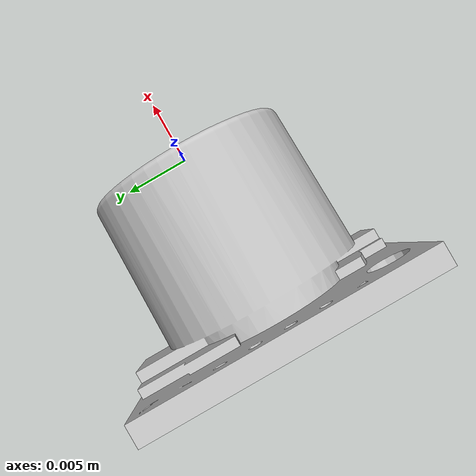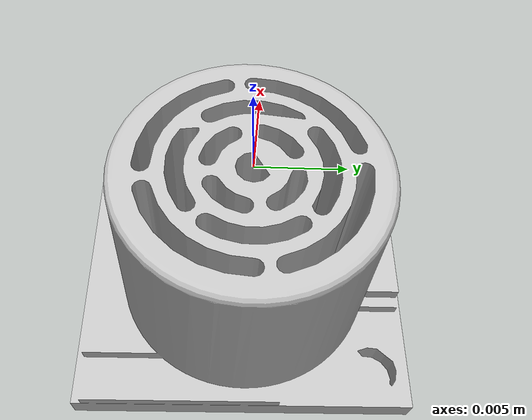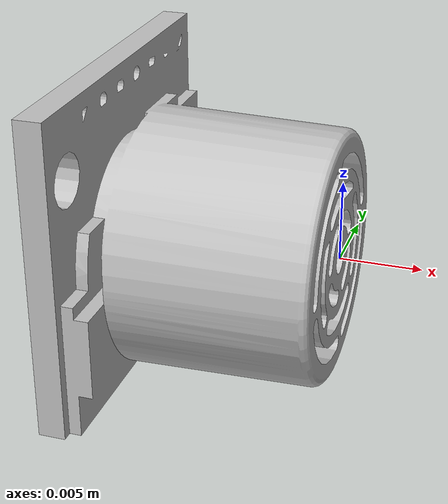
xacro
<robot name="Rear_URF_link"><link name="Rear_URF_link">
    <inertial>
      <origin rpy="0 0 0" xyz="-0.00942258060476558 1.68888278491873E-05 -0.000193183712129189" />
      <mass value="0.0027748785439141" />
      <inertia ixx="1.28314681514116E-07" ixy="-1.54585356343498E-10" ixz="3.1103059972555E-09" iyy="1.18940672500041E-07" iyz="4.35265830364838E-09" izz="1.28434121553125E-07" />
    </inertial>
    <visual>
      <origin rpy="0 0 0" xyz="0 0 0" />
      <geometry>
        <mesh filename="package://robotican_description/komodo/meshes/Rear_URF_link.STL" />
      </geometry>
      <material name="">
        <color rgba="0.752941176470588 0.752941176470588 0.752941176470588 1" />
      </material>
    </visual>
    <collision>
      <origin rpy="0 0 0" xyz="0 0 0" />
      <geometry>
        <mesh filename="package://robotican_description/komodo/meshes/Rear_URF_link.STL" />
      </geometry>
    </collision>
  </link>
  </robot>
